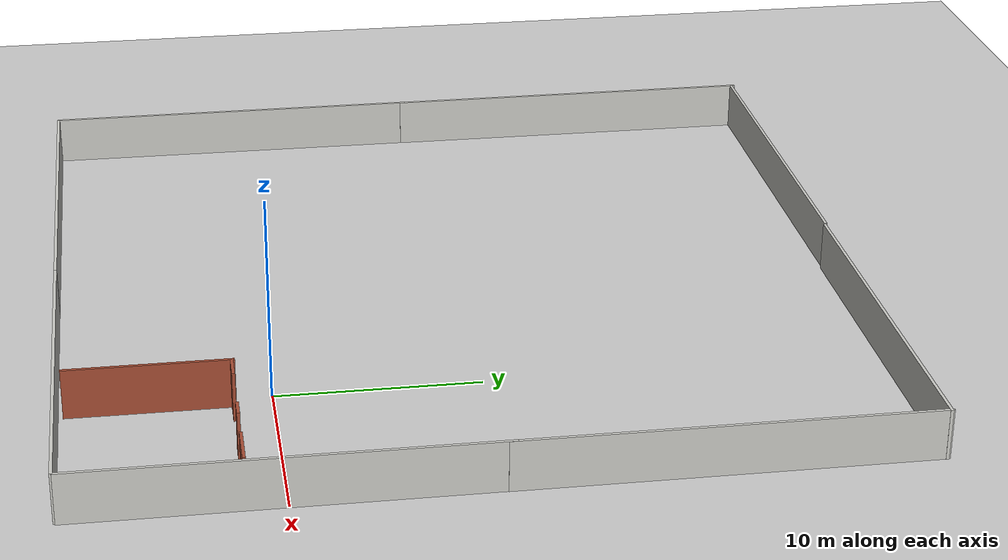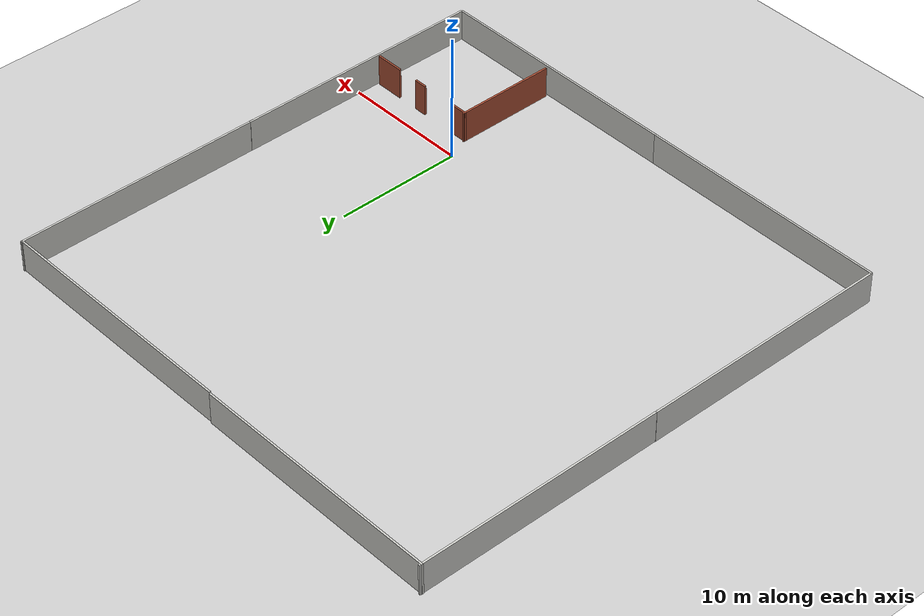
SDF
<sdf version="1.6">
 <world name="default">
  <light name="sun" type="directional">
   <cast_shadows>0</cast_shadows>
   <pose>0 0 10 0 -0 0</pose>
   <diffuse>0.8 0.8 0.8 1</diffuse>
   <specular>0.2 0.2 0.2 1</specular>
   <attenuation>
    <range>1000</range>
    <constant>0.9</constant>
    <linear>0.01</linear>
    <quadratic>0.001</quadratic>
   </attenuation>
   <direction>-0.5 0.1 -0.9</direction>
   <spot><inner_angle>0</inner_angle><outer_angle>0</outer_angle><falloff>0</falloff></spot>
  </light>
  <model name="ground_plane">
   <static>1</static>
   <link name="link">
    <collision name="collision">
     <geometry><plane><normal>0 0 1</normal><size>100 100</size></plane></geometry>
     <surface><friction><ode><mu>100</mu><mu2>50</mu2></ode></friction></surface>
    </collision>
    <visual name="visual">
     <cast_shadows>0</cast_shadows>
     <geometry><plane><normal>0 0 1</normal><size>100 100</size></plane></geometry>
     <material>
      <script><uri>file://media/materials/scripts/gazebo.material</uri><name>Gazebo/Grey</name></script>
     </material>
    </visual>
   </link>
  </model>
  <gravity>0 0 -9.8</gravity>
  <magnetic_field>6e-06 2.3e-05 -4.2e-05</magnetic_field>
  <atmosphere type="adiabatic"/>
  <physics name="default_physics" default="0" type="ode">
   <max_step_size>0.001</max_step_size>
   <real_time_factor>1</real_time_factor>
   <real_time_update_rate>1000</real_time_update_rate>
  </physics>
  <scene><ambient>0.4 0.4 0.4 1</ambient><background>0.7 0.7 0.7 1</background><shadows>0</shadows></scene>
  <spherical_coordinates>
   <surface_model>EARTH_WGS84</surface_model>
   <latitude_deg>0</latitude_deg>
   <longitude_deg>0</longitude_deg>
   <elevation>0</elevation>
   <heading_deg>0</heading_deg>
  </spherical_coordinates>
  <model name="single_wall">
   <pose>-29.9485 0.015885 0 0 -0 1.57</pose>
   <link name="Wall_3">
    <collision name="Wall_3_Collision">
     <geometry><box><size>20 0.15 2.5</size></box></geometry>
     <pose>0 0 1.25 0 -0 0</pose>
    </collision>
    <visual name="Wall_3_Visual">
     <pose>0 0 1.25 0 -0 0</pose>
     <geometry><box><size>20 0.15 2.5</size></box></geometry>
     <material>
      <script><uri>file://media/materials/scripts/gazebo.material</uri><name>Gazebo/CeilingTiled</name></script>
      <ambient>1 1 1 1</ambient>
     </material>
     <meta><layer>0</layer></meta>
    </visual>
   </link>
   <static>1</static>
  </model>
  <model name="single_wall_clone">
   <pose>0.075315 29.458 0 0 -0 0</pose>
   <link name="Wall_3">
    <collision name="Wall_3_Collision">
     <geometry><box><size>20 0.15 2.5</size></box></geometry>
     <pose>0 0 1.25 0 -0 0</pose>
    </collision>
    <visual name="Wall_3_Visual">
     <pose>0 0 1.25 0 -0 0</pose>
     <geometry><box><size>20 0.15 2.5</size></box></geometry>
     <material>
      <script><uri>file://media/materials/scripts/gazebo.material</uri><name>Gazebo/CeilingTiled</name></script>
      <ambient>1 1 1 1</ambient>
     </material>
     <meta><layer>0</layer></meta>
    </visual>
   </link>
   <static>1</static>
  </model>
  <model name="single_wall_clone_0">
   <pose>0 -10 0 0 -0 3.14</pose>
   <link name="Wall_3">
    <collision name="Wall_3_Collision">
     <geometry><box><size>20 0.15 2.5</size></box></geometry>
     <pose>0 0 1.25 0 -0 0</pose>
    </collision>
    <visual name="Wall_3_Visual">
     <pose>0 0 1.25 0 -0 0</pose>
     <geometry><box><size>20 0.15 2.5</size></box></geometry>
     <material>
      <script><uri>file://media/materials/scripts/gazebo.material</uri><name>Gazebo/CeilingTiled</name></script>
      <ambient>1 1 1 1</ambient>
     </material>
     <meta><layer>0</layer></meta>
    </visual>
   </link>
   <static>1</static>
  </model>
  <model name="single_wall_clone_1">
   <pose>10 0 0 0 0 -1.57</pose>
   <link name="Wall_3">
    <collision name="Wall_3_Collision">
     <geometry><box><size>20 0.15 2.5</size></box></geometry>
     <pose>0 0 1.25 0 -0 0</pose>
    </collision>
    <visual name="Wall_3_Visual">
     <pose>0 0 1.25 0 -0 0</pose>
     <geometry><box><size>20 0.15 2.5</size></box></geometry>
     <material>
      <script><uri>file://media/materials/scripts/gazebo.material</uri><name>Gazebo/CeilingTiled</name></script>
      <ambient>1 1 1 1</ambient>
     </material>
     <meta><layer>0</layer></meta>
    </visual>
   </link>
   <static>1</static>
  </model>
  <model name="single_wall_1">
   <pose>0.7388 -5.70207 0 0 0 -1.57</pose>
   <link name="Wall_9">
    <collision name="Wall_9_Collision">
     <geometry><box><size>8 0.15 2.5</size></box></geometry>
     <pose>0 0 1.25 0 -0 0</pose>
    </collision>
    <visual name="Wall_9_Visual">
     <pose>0 0 1.25 0 -0 0</pose>
     <geometry><box><size>8 0.15 2.5</size></box></geometry>
     <material>
      <script><uri>file://media/materials/scripts/gazebo.material</uri><name>Gazebo/Bricks</name></script>
      <ambient>1 1 1 1</ambient>
     </material>
     <meta><layer>0</layer></meta>
    </visual>
   </link>
   <static>1</static>
  </model>
  <model name="single_wall_1_clone_clone">
   <link name="Wall_9">
    <inertial>
     <inertia><ixx>0</ixx><ixy>0</ixy><ixz>0</ixz><iyy>0</iyy><iyz>0</iyz><izz>0</izz></inertia>
     <mass>0</mass>
    </inertial>
    <visual name="Wall_9_Visual">
     <pose>0 0 1.25 0 -0 0</pose>
     <geometry><box><size>1 0.15 2.5</size></box></geometry>
     <material>
      <script><uri>file://media/materials/scripts/gazebo.material</uri><name>Gazebo/Bricks</name></script>
      <ambient>1 1 1 1</ambient>
      <shader type="pixel"><normal_map>__default__</normal_map></shader>
      <diffuse>1 1 1 1</diffuse>
      <specular>0.2 0.2 0.2 1</specular>
      <emissive>0 0 0 1</emissive>
     </material>
     <meta><layer>0</layer></meta>
     <cast_shadows>0</cast_shadows>
    </visual>
    <collision name="Wall_9_Collision">
     <pose>0 0 1.25 0 -0 0</pose>
     <geometry><box><size>1 0.15 2.5</size></box></geometry>
     <surface>
      <friction>
       <ode><mu>1</mu><mu2>1</mu2><fdir1>0 0 0</fdir1><slip1>0</slip1><slip2>0</slip2></ode>
       <torsional>
        <coefficient>1</coefficient>
        <patch_radius>0</patch_radius>
        <surface_radius>0</surface_radius>
        <use_patch_radius>1</use_patch_radius>
        <ode><slip>0</slip></ode>
       </torsional>
      </friction>
      <bounce><restitution_coefficient>0</restitution_coefficient><threshold>1e+06</threshold></bounce>
      <contact>
       <collide_without_contact>0</collide_without_contact>
       <collide_without_contact_bitmask>1</collide_without_contact_bitmask>
       <collide_bitmask>1</collide_bitmask>
       <ode>
        <soft_cfm>0</soft_cfm>
        <soft_erp>0.2</soft_erp>
        <kp>1e+13</kp>
        <kd>1</kd>
        <max_vel>0.01</max_vel>
        <min_depth>0</min_depth>
       </ode>
       <bullet>
        <split_impulse>1</split_impulse>
        <split_impulse_penetration_threshold>-0.01</split_impulse_penetration_threshold>
        <soft_cfm>0</soft_cfm>
        <soft_erp>0.2</soft_erp>
        <kp>1e+13</kp>
        <kd>1</kd>
       </bullet>
      </contact>
     </surface>
    </collision>
   </link>
   <static>1</static>
   <pose>5.36173 -1.85107 0 0 -0 3.14</pose>
  </model>
  <model name="single_wall_1_clone">
   <link name="Wall_9">
    <inertial>
     <inertia><ixx>0</ixx><ixy>0</ixy><ixz>0</ixz><iyy>0</iyy><iyz>0</iyz><izz>0</izz></inertia>
     <mass>0</mass>
    </inertial>
    <visual name="Wall_9_Visual">
     <pose>0 0 1.25 0 -0 0</pose>
     <geometry><box><size>1.5 0.15 2.5</size></box></geometry>
     <material>
      <script><uri>file://media/materials/scripts/gazebo.material</uri><name>Gazebo/Bricks</name></script>
      <ambient>1 1 1 1</ambient>
      <shader type="pixel"><normal_map>__default__</normal_map></shader>
      <diffuse>1 1 1 1</diffuse>
      <specular>0.2 0.2 0.2 1</specular>
      <emissive>0 0 0 1</emissive>
     </material>
     <meta><layer>0</layer></meta>
     <cast_shadows>0</cast_shadows>
    </visual>
    <collision name="Wall_9_Collision">
     <pose>0 0 1.25 0 -0 0</pose>
     <geometry><box><size>1 0.15 2.5</size></box></geometry>
     <surface>
      <friction>
       <ode><mu>1</mu><mu2>1</mu2><fdir1>0 0 0</fdir1><slip1>0</slip1><slip2>0</slip2></ode>
       <torsional>
        <coefficient>1</coefficient>
        <patch_radius>0</patch_radius>
        <surface_radius>0</surface_radius>
        <use_patch_radius>1</use_patch_radius>
        <ode><slip>0</slip></ode>
       </torsional>
      </friction>
      <bounce><restitution_coefficient>0</restitution_coefficient><threshold>1e+06</threshold></bounce>
      <contact>
       <collide_without_contact>0</collide_without_contact>
       <collide_without_contact_bitmask>1</collide_without_contact_bitmask>
       <collide_bitmask>1</collide_bitmask>
       <ode>
        <soft_cfm>0</soft_cfm>
        <soft_erp>0.2</soft_erp>
        <kp>1e+13</kp>
        <kd>1</kd>
        <max_vel>0.01</max_vel>
        <min_depth>0</min_depth>
       </ode>
       <bullet>
        <split_impulse>1</split_impulse>
        <split_impulse_penetration_threshold>-0.01</split_impulse_penetration_threshold>
        <soft_cfm>0</soft_cfm>
        <soft_erp>0.2</soft_erp>
        <kp>1e+13</kp>
        <kd>1</kd>
       </bullet>
      </contact>
     </surface>
    </collision>
   </link>
   <static>1</static>
   <pose>1.40743 -1.85107 0 0 -0 3.14</pose>
  </model>
  <model name="single_wall_1_clone_clone_clone">
   <link name="Wall_9">
    <inertial>
     <inertia><ixx>0</ixx><ixy>0</ixy><ixz>0</ixz><iyy>0</iyy><iyz>0</iyz><izz>0</izz></inertia>
     <mass>0</mass>
    </inertial>
    <visual name="Wall_9_Visual">
     <pose>0 0 1.25 0 -0 0</pose>
     <geometry><box><size>2.25 0.15 2.5</size></box></geometry>
     <material>
      <script><uri>file://media/materials/scripts/gazebo.material</uri><name>Gazebo/Bricks</name></script>
      <ambient>1 1 1 1</ambient>
      <shader type="pixel"><normal_map>__default__</normal_map></shader>
      <diffuse>1 1 1 1</diffuse>
      <specular>0.2 0.2 0.2 1</specular>
      <emissive>0 0 0 1</emissive>
     </material>
     <meta><layer>0</layer></meta>
     <cast_shadows>0</cast_shadows>
    </visual>
    <collision name="Wall_9_Collision">
     <pose>0 0 1.25 0 -0 0</pose>
     <geometry><box><size>2.25 0.15 2.5</size></box></geometry>
     <surface>
      <friction>
       <ode><mu>1</mu><mu2>1</mu2><fdir1>0 0 0</fdir1><slip1>0</slip1><slip2>0</slip2></ode>
       <torsional>
        <coefficient>1</coefficient>
        <patch_radius>0</patch_radius>
        <surface_radius>0</surface_radius>
        <use_patch_radius>1</use_patch_radius>
        <ode><slip>0</slip></ode>
       </torsional>
      </friction>
      <bounce><restitution_coefficient>0</restitution_coefficient><threshold>1e+06</threshold></bounce>
      <contact>
       <collide_without_contact>0</collide_without_contact>
       <collide_without_contact_bitmask>1</collide_without_contact_bitmask>
       <collide_bitmask>1</collide_bitmask>
       <ode>
        <soft_cfm>0</soft_cfm>
        <soft_erp>0.2</soft_erp>
        <kp>1e+13</kp>
        <kd>1</kd>
        <max_vel>0.01</max_vel>
        <min_depth>0</min_depth>
       </ode>
       <bullet>
        <split_impulse>1</split_impulse>
        <split_impulse_penetration_threshold>-0.01</split_impulse_penetration_threshold>
        <soft_cfm>0</soft_cfm>
        <soft_erp>0.2</soft_erp>
        <kp>1e+13</kp>
        <kd>1</kd>
       </bullet>
      </contact>
     </surface>
    </collision>
   </link>
   <static>1</static>
   <pose>8.68743 -1.85107 0 0 -0 3.14</pose>
  </model>
  <model name="single_wall_clone_0_clone">
   <pose>-19.9642 -9.96262 0 0 -0 3.14</pose>
   <link name="Wall_3">
    <collision name="Wall_3_Collision">
     <geometry><box><size>20 0.15 2.5</size></box></geometry>
     <pose>0 0 1.25 0 -0 0</pose>
    </collision>
    <visual name="Wall_3_Visual">
     <pose>0 0 1.25 0 -0 0</pose>
     <geometry><box><size>20 0.15 2.5</size></box></geometry>
     <material>
      <script><uri>file://media/materials/scripts/gazebo.material</uri><name>Gazebo/CeilingTiled</name></script>
      <ambient>1 1 1 1</ambient>
     </material>
     <meta><layer>0</layer></meta>
    </visual>
   </link>
   <static>1</static>
  </model>
  <model name="single_wall_clone_1_clone">
   <pose>9.99895 19.592 0 0 0 -1.57</pose>
   <link name="Wall_3">
    <collision name="Wall_3_Collision">
     <geometry><box><size>20 0.15 2.5</size></box></geometry>
     <pose>0 0 1.25 0 -0 0</pose>
    </collision>
    <visual name="Wall_3_Visual">
     <pose>0 0 1.25 0 -0 0</pose>
     <geometry><box><size>20 0.15 2.5</size></box></geometry>
     <material>
      <script><uri>file://media/materials/scripts/gazebo.material</uri><name>Gazebo/CeilingTiled</name></script>
      <ambient>1 1 1 1</ambient>
     </material>
     <meta><layer>0</layer></meta>
    </visual>
   </link>
   <static>1</static>
  </model>
  <model name="single_wall_clone_clone">
   <pose>-20.0246 29.5415 0 0 -0 0</pose>
   <link name="Wall_3">
    <collision name="Wall_3_Collision">
     <geometry><box><size>20 0.15 2.5</size></box></geometry>
     <pose>0 0 1.25 0 -0 0</pose>
    </collision>
    <visual name="Wall_3_Visual">
     <pose>0 0 1.25 0 -0 0</pose>
     <geometry><box><size>20 0.15 2.5</size></box></geometry>
     <material>
      <script><uri>file://media/materials/scripts/gazebo.material</uri><name>Gazebo/CeilingTiled</name></script>
      <ambient>1 1 1 1</ambient>
     </material>
     <meta><layer>0</layer></meta>
    </visual>
   </link>
   <static>1</static>
  </model>
  <model name="single_wall_clone_2">
   <pose>-29.919 19.7436 0 0 -0 1.57</pose>
   <link name="Wall_3">
    <collision name="Wall_3_Collision">
     <geometry><box><size>20 0.15 2.5</size></box></geometry>
     <pose>0 0 1.25 0 -0 0</pose>
    </collision>
    <visual name="Wall_3_Visual">
     <pose>0 0 1.25 0 -0 0</pose>
     <geometry><box><size>20 0.15 2.5</size></box></geometry>
     <material>
      <script><uri>file://media/materials/scripts/gazebo.material</uri><name>Gazebo/CeilingTiled</name></script>
      <ambient>1 1 1 1</ambient>
     </material>
     <meta><layer>0</layer></meta>
    </visual>
   </link>
   <static>1</static>
  </model>
 </world>
</sdf>
